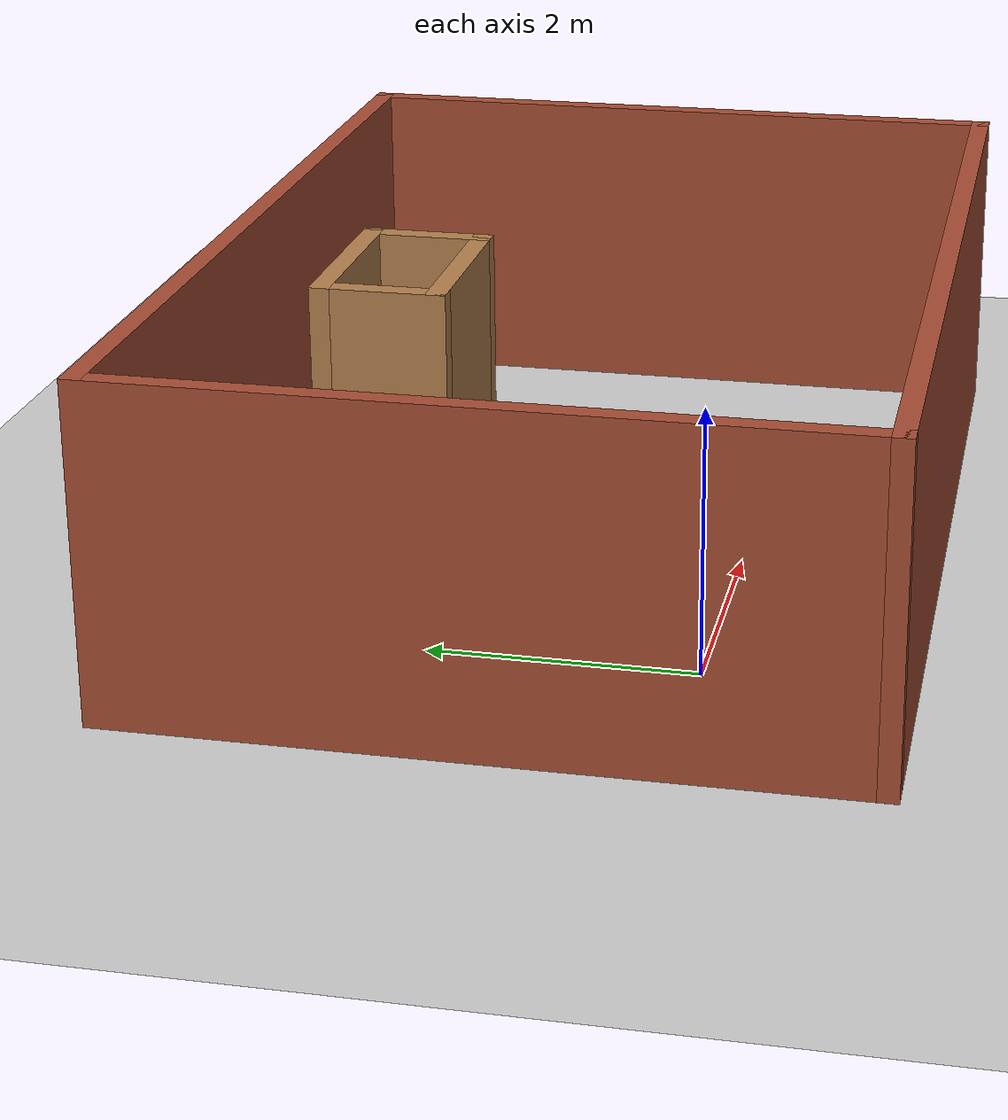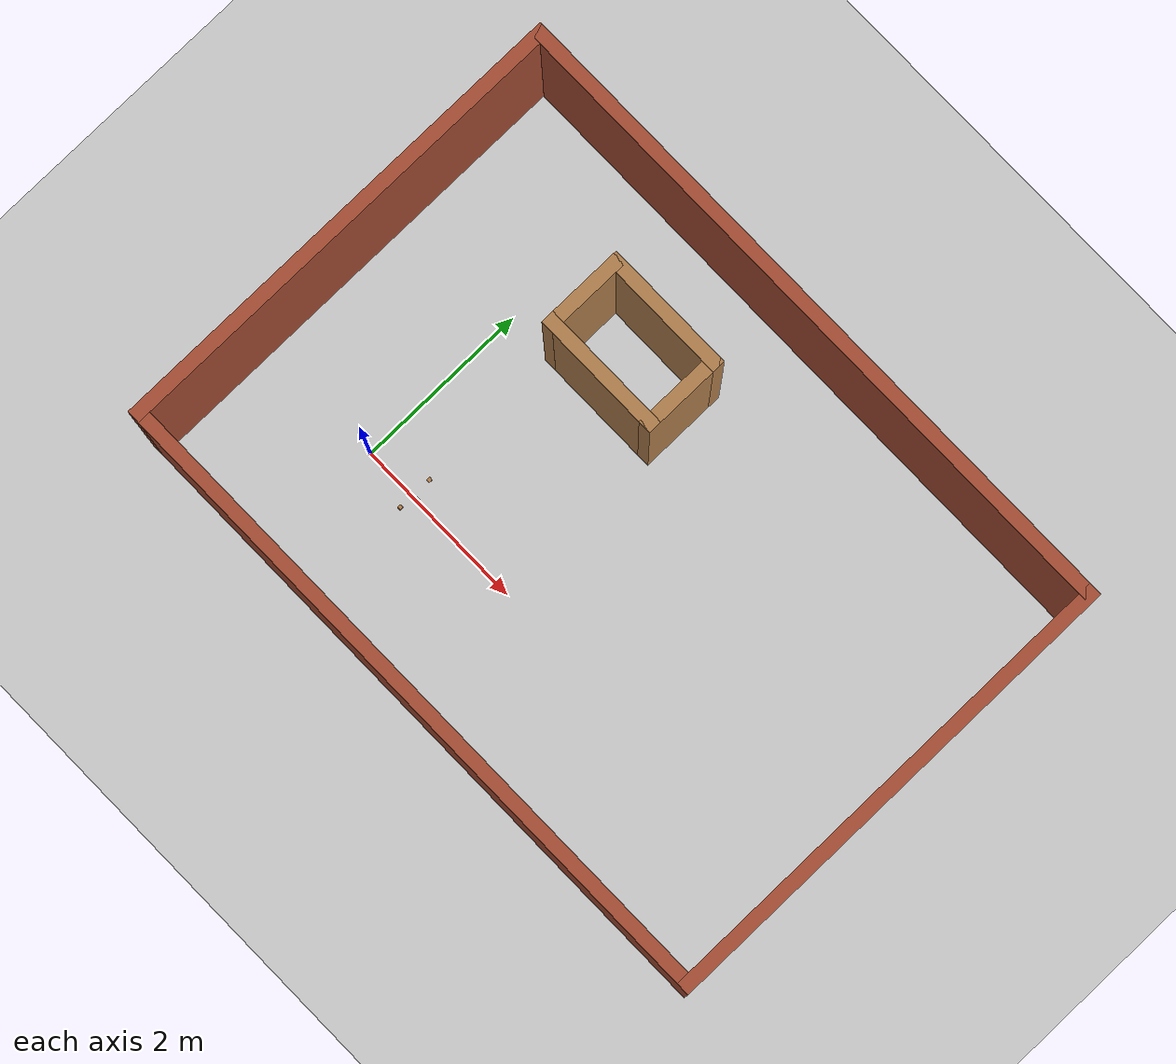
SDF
<sdf version="1.6">
 <world name="default">
  <light name="sun" type="directional">
   <pose>0 0 10 0 -0 0</pose>
   <diffuse>0.8 0.8 0.8 1</diffuse>
   <specular>0.2 0.2 0.2 1</specular>
   <attenuation>
    <range>1000</range>
    <constant>0.9</constant>
    <linear>0.01</linear>
    <quadratic>0.001</quadratic>
   </attenuation>
   <direction>-0.5 0.1 -0.9</direction>
  </light>
  <model name="ground_plane">
   <static>1</static>
   <link name="link">
    <collision name="collision">
     <geometry><plane><normal>0 0 1</normal><size>100 100</size></plane></geometry>
     <surface><friction><ode><mu>100</mu><mu2>50</mu2></ode></friction></surface>
    </collision>
    <visual name="visual">
     <cast_shadows>0</cast_shadows>
     <geometry><plane><normal>0 0 1</normal><size>100 100</size></plane></geometry>
     <material>
      <script><uri>file://media/materials/scripts/gazebo.material</uri><name>Gazebo/Grey</name></script>
     </material>
    </visual>
   </link>
  </model>
  <gravity>0 0 -9.8</gravity>
  <magnetic_field>6e-06 2.3e-05 -4.2e-05</magnetic_field>
  <atmosphere type="adiabatic"/>
  <physics name="default_physics" default="0" type="ode">
   <max_step_size>0.001</max_step_size>
   <real_time_factor>1</real_time_factor>
   <real_time_update_rate>1000</real_time_update_rate>
  </physics>
  <scene><ambient>0.4 0.4 0.4 1</ambient><background>0.7 0.7 0.7 1</background><shadows>1</shadows></scene>
  <audio><device>default</device></audio>
  <spherical_coordinates>
   <surface_model>EARTH_WGS84</surface_model>
   <latitude_deg>0</latitude_deg>
   <longitude_deg>0</longitude_deg>
   <elevation>0</elevation>
   <heading_deg>0</heading_deg>
  </spherical_coordinates>
  <model name="HRI_lab">
   <pose>2.28185 1.22165 0 0 -0 0</pose>
   <link name="Wall_0">
    <collision name="Wall_0_Collision">
     <geometry><box><size>5.5 0.15 2.5</size></box></geometry>
     <pose>0 0 1.25 0 -0 0</pose>
    </collision>
    <visual name="Wall_0_Visual">
     <pose>0 0 1.25 0 -0 0</pose>
     <geometry><box><size>5.5 0.15 2.5</size></box></geometry>
     <material>
      <script><uri>file://media/materials/scripts/gazebo.material</uri><name>Gazebo/Bricks</name></script>
      <ambient>1 1 1 1</ambient>
     </material>
     <meta><layer>0</layer></meta>
    </visual>
    <pose>-3.8 0 0 0 -0 1.5708</pose>
   </link>
   <link name="Wall_10">
    <collision name="Wall_10_Collision">
     <geometry><box><size>1 0.15 2.5</size></box></geometry>
     <pose>0 0 1.25 0 -0 0</pose>
    </collision>
    <visual name="Wall_10_Visual">
     <pose>0 0 1.25 0 -0 0</pose>
     <geometry><box><size>1 0.15 2.5</size></box></geometry>
     <material>
      <script><uri>file://media/materials/scripts/gazebo.material</uri><name>Gazebo/Wood</name></script>
      <ambient>1 1 1 1</ambient>
     </material>
     <meta><layer>0</layer></meta>
    </visual>
    <pose>-1.66966 1.22023 0 0 -0 -1.5708</pose>
   </link>
   <link name="Wall_11">
    <collision name="Wall_11_Collision">
     <geometry><box><size>1.5 0.15 2.5</size></box></geometry>
     <pose>0 0 1.25 0 -0 0</pose>
    </collision>
    <visual name="Wall_11_Visual">
     <pose>0 0 1.25 0 -0 0</pose>
     <geometry><box><size>1.5 0.15 2.5</size></box></geometry>
     <material>
      <script><uri>file://media/materials/scripts/gazebo.material</uri><name>Gazebo/Wood</name></script>
      <ambient>1 1 1 1</ambient>
     </material>
     <meta><layer>0</layer></meta>
    </visual>
    <pose>-0.99466 0.795231 0 0 -0 0</pose>
   </link>
   <link name="Wall_12">
    <collision name="Wall_12_Collision">
     <geometry><box><size>1 0.15 2.5</size></box></geometry>
     <pose>0 0 1.25 0 -0 0</pose>
    </collision>
    <visual name="Wall_12_Visual">
     <pose>0 0 1.25 0 -0 0</pose>
     <geometry><box><size>1 0.15 2.5</size></box></geometry>
     <material>
      <script><uri>file://media/materials/scripts/gazebo.material</uri><name>Gazebo/Wood</name></script>
      <ambient>1 1 1 1</ambient>
     </material>
     <meta><layer>0</layer></meta>
    </visual>
    <pose>-0.31966 1.22023 0 0 -0 1.5708</pose>
   </link>
   <link name="Wall_13">
    <collision name="Wall_13_Collision">
     <geometry><box><size>1.5 0.15 2.5</size></box></geometry>
     <pose>0 0 1.25 0 -0 0</pose>
    </collision>
    <visual name="Wall_13_Visual">
     <pose>0 0 1.25 0 -0 0</pose>
     <geometry><box><size>1.5 0.15 2.5</size></box></geometry>
     <material>
      <script><uri>file://media/materials/scripts/gazebo.material</uri><name>Gazebo/Wood</name></script>
      <ambient>1 1 1 1</ambient>
     </material>
     <meta><layer>0</layer></meta>
    </visual>
    <pose>-0.99466 1.64523 0 0 -0 3.14159</pose>
   </link>
   <link name="Wall_6">
    <collision name="Wall_6_Collision">
     <geometry><box><size>7.75 0.15 2.5</size></box></geometry>
     <pose>0 0 1.25 0 -0 0</pose>
    </collision>
    <visual name="Wall_6_Visual">
     <pose>0 0 1.25 0 -0 0</pose>
     <geometry><box><size>7.75 0.15 2.5</size></box></geometry>
     <material>
      <script><uri>file://media/materials/scripts/gazebo.material</uri><name>Gazebo/Bricks</name></script>
      <ambient>1 1 1 1</ambient>
     </material>
     <meta><layer>0</layer></meta>
    </visual>
    <pose>0 2.675 0 0 -0 0</pose>
   </link>
   <link name="Wall_7">
    <collision name="Wall_7_Collision">
     <geometry><box><size>5.5 0.15 2.5</size></box></geometry>
     <pose>0 0 1.25 0 -0 0</pose>
    </collision>
    <visual name="Wall_7_Visual">
     <pose>0 0 1.25 0 -0 0</pose>
     <geometry><box><size>5.5 0.15 2.5</size></box></geometry>
     <material>
      <script><uri>file://media/materials/scripts/gazebo.material</uri><name>Gazebo/Bricks</name></script>
      <ambient>1 1 1 1</ambient>
     </material>
     <meta><layer>0</layer></meta>
    </visual>
    <pose>3.8 0 0 0 -0 -1.5708</pose>
   </link>
   <link name="Wall_8">
    <collision name="Wall_8_Collision">
     <geometry><box><size>7.75 0.15 2.5</size></box></geometry>
     <pose>0 0 1.25 0 -0 0</pose>
    </collision>
    <visual name="Wall_8_Visual">
     <pose>0 0 1.25 0 -0 0</pose>
     <geometry><box><size>7.75 0.15 2.5</size></box></geometry>
     <material>
      <script><uri>file://media/materials/scripts/gazebo.material</uri><name>Gazebo/Bricks</name></script>
      <ambient>1 1 1 1</ambient>
     </material>
     <meta><layer>0</layer></meta>
    </visual>
    <pose>0 -2.675 0 0 -0 3.14159</pose>
   </link>
   <static>1</static>
  </model>
  <model name="cube1">
   <pose>0.7 -0.2 0.775 0 0 0</pose>
   <link name="link">
    <pose>0 0 0.02 0 0 0</pose>
    <inertial>
     <mass>0.0565</mass>
     <inertia>
      <ixx>2.3541666666666672e-05</ixx>
      <ixy>0</ixy>
      <ixz>0</ixz>
      <iyy>2.3541666666666672e-05</iyy>
      <iyz>0</iyz>
      <izz>2.3541666666666672e-05</izz>
     </inertia>
    </inertial>
    <collision name="collision">
     <geometry><box><size>0.04 0.04 0.04</size></box></geometry>
     <surface>
      <contact>
       <poissons_ratio>0.347</poissons_ratio>
       <elastic_modulus>8.8e+09</elastic_modulus>
       <ode><kp>100000</kp><kd>1</kd><max_vel>1.0</max_vel><min_depth>0.001</min_depth></ode>
      </contact>
      <friction>
       <torsional>
        <coefficient>1.0</coefficient>
        <use_patch_radius>0</use_patch_radius>
        <surface_radius>0.05</surface_radius>
       </torsional>
      </friction>
     </surface>
    </collision>
    <visual name="visual">
     <geometry><box><size>0.04 0.04 0.04</size></box></geometry>
     <material>
      <script><uri>file://media/materials/scripts/gazebo.material</uri><name>Gazebo/Wood</name></script>
     </material>
    </visual>
   </link>
  </model>
  <model name="cube2">
   <pose>0.7 0 0.3 0 0 0</pose>
   <static>0</static>
   <link name="link">
    <pose>0 0 0.02 0 0 0</pose>
    <gravity>0</gravity>
    <inertial>
     <mass>0.2</mass>
     <inertia><ixx>1.5e-05</ixx><ixy>0</ixy><ixz>0</ixz><iyy>1.5e-05</iyy><iyz>0</iyz><izz>1.5e-05</izz></inertia>
    </inertial>
    <collision name="collision">
     <geometry><box><size>0.04 0.04 0.04</size></box></geometry>
     <pose>0 0 0.02 0 0 0</pose>
     <surface>
      <friction>
       <torsional>
        <coefficient>1.0</coefficient>
        <use_patch_radius>1</use_patch_radius>
        <surface_radius>0.05</surface_radius>
       </torsional>
       <ode><mu>1.0</mu><mu2>1.0</mu2></ode>
      </friction>
      <contact>
       <poissons_ratio>0.3</poissons_ratio>
       <elastic_modulus>8.8e+09</elastic_modulus>
       <ode><kp>100000</kp><kd>1</kd><max_vel>1.0</max_vel><min_depth>0.001</min_depth></ode>
      </contact>
     </surface>
    </collision>
    <visual name="visual">
     <geometry><box><size>0.04 0.04 0.04</size></box></geometry>
     <pose>0 0 0.02 0 0 0</pose>
     <material>
      <script><uri>file://media/materials/scripts/gazebo.material</uri><name>Gazebo/Wood</name></script>
     </material>
    </visual>
   </link>
  </model>
  <model name="cube3">
   <pose>0.7 0.2 0.775 0 0 0</pose>
   <link name="link">
    <pose>0 0 0.02 0 0 0</pose>
    <inertial>
     <mass>0.0565</mass>
     <inertia>
      <ixx>2.3541666666666672e-05</ixx>
      <ixy>0</ixy>
      <ixz>0</ixz>
      <iyy>2.3541666666666672e-05</iyy>
      <iyz>0</iyz>
      <izz>2.3541666666666672e-05</izz>
     </inertia>
    </inertial>
    <collision name="collision">
     <geometry><box><size>0.04 0.04 0.04</size></box></geometry>
     <surface>
      <contact>
       <poissons_ratio>0.347</poissons_ratio>
       <elastic_modulus>8.8e+09</elastic_modulus>
       <ode><kp>100000</kp><kd>1</kd><max_vel>1.0</max_vel><min_depth>0.001</min_depth></ode>
      </contact>
      <friction>
       <torsional>
        <coefficient>1.0</coefficient>
        <use_patch_radius>0</use_patch_radius>
        <surface_radius>0.05</surface_radius>
       </torsional>
      </friction>
     </surface>
    </collision>
    <visual name="visual">
     <geometry><box><size>0.04 0.04 0.04</size></box></geometry>
     <material>
      <script><uri>file://media/materials/scripts/gazebo.material</uri><name>Gazebo/WoodPallet</name></script>
     </material>
    </visual>
   </link>
  </model>
 </world>
</sdf>
